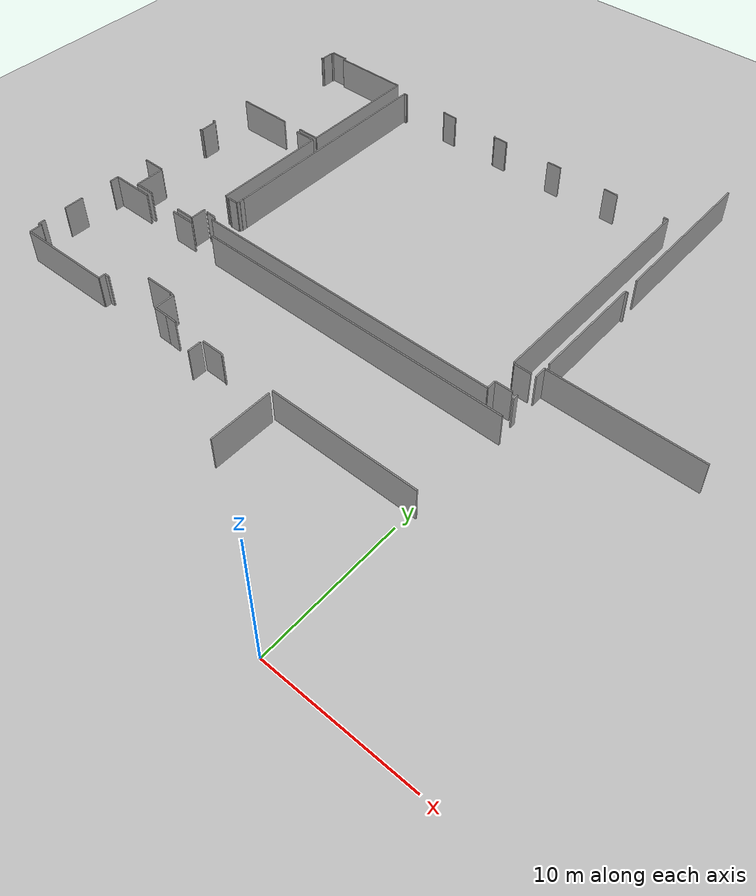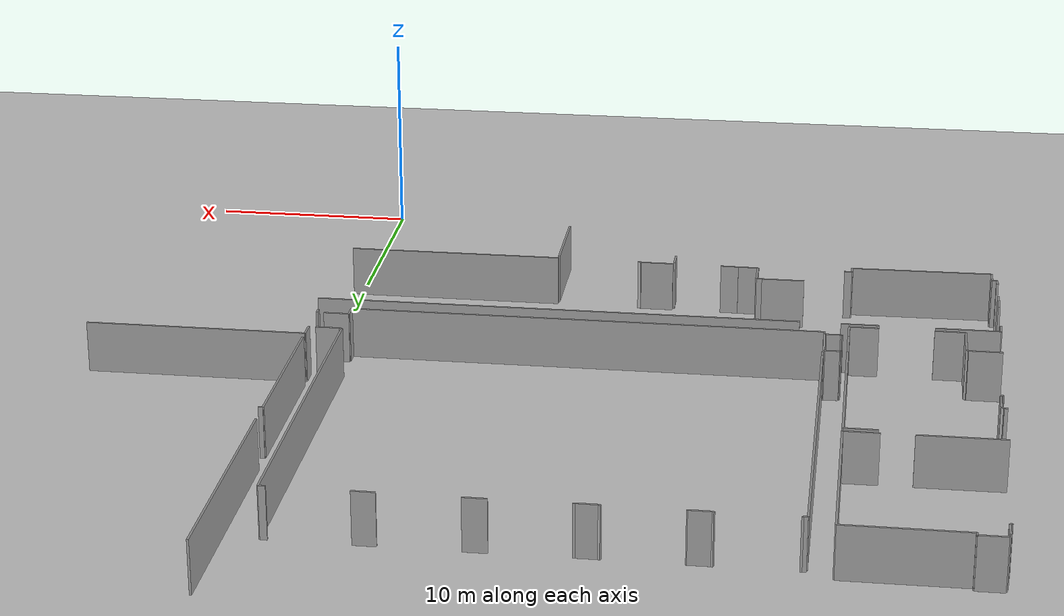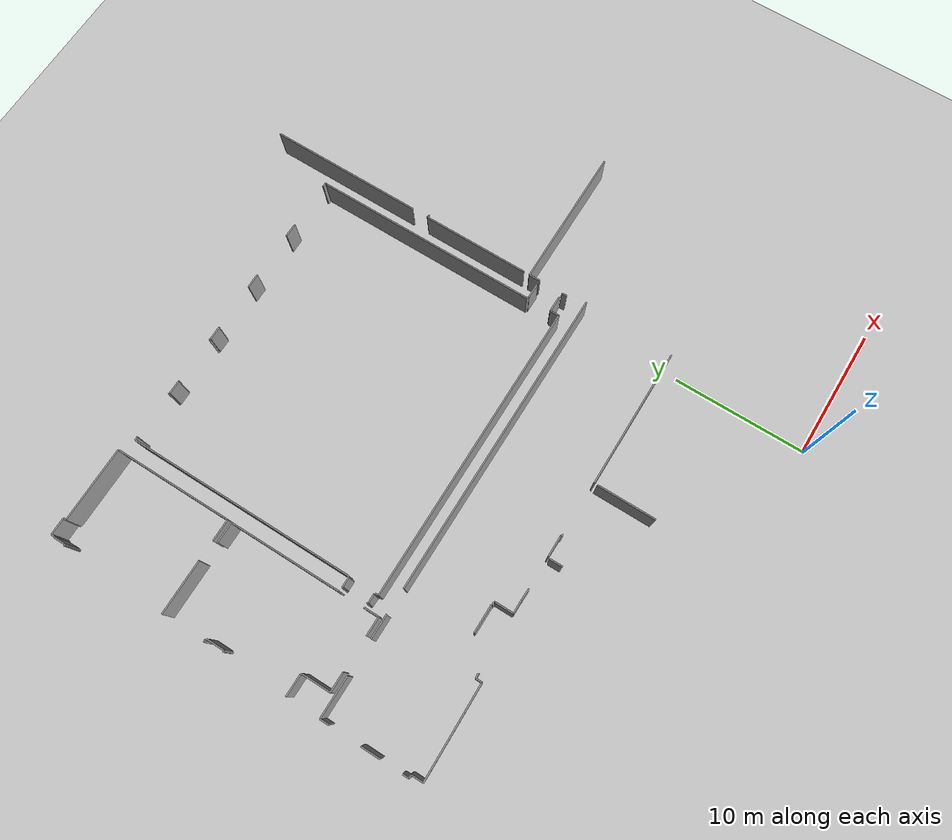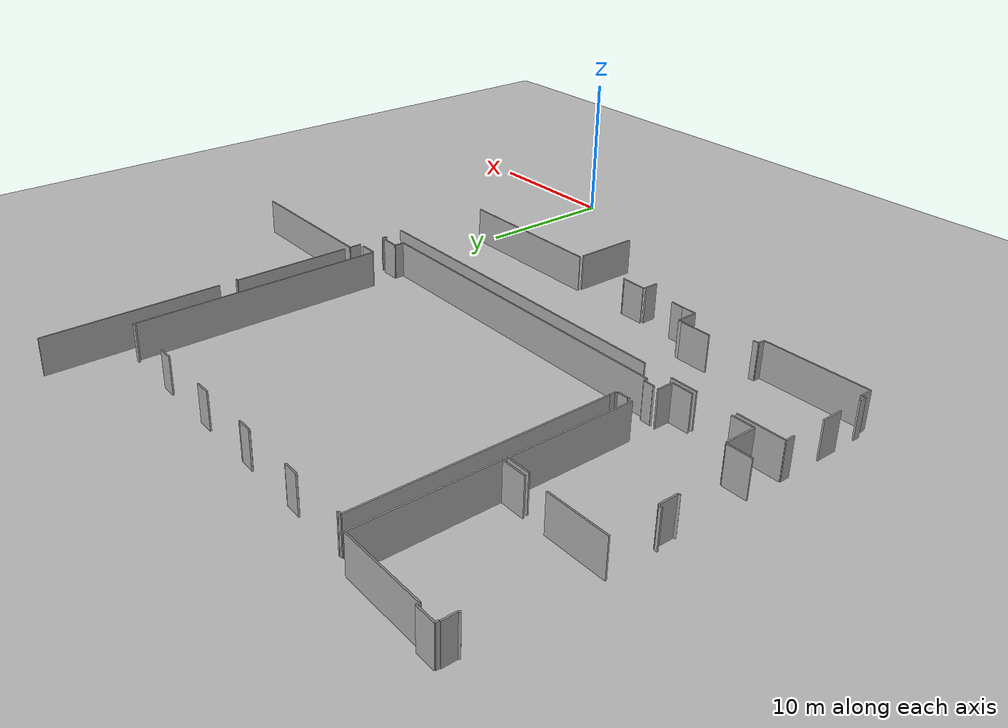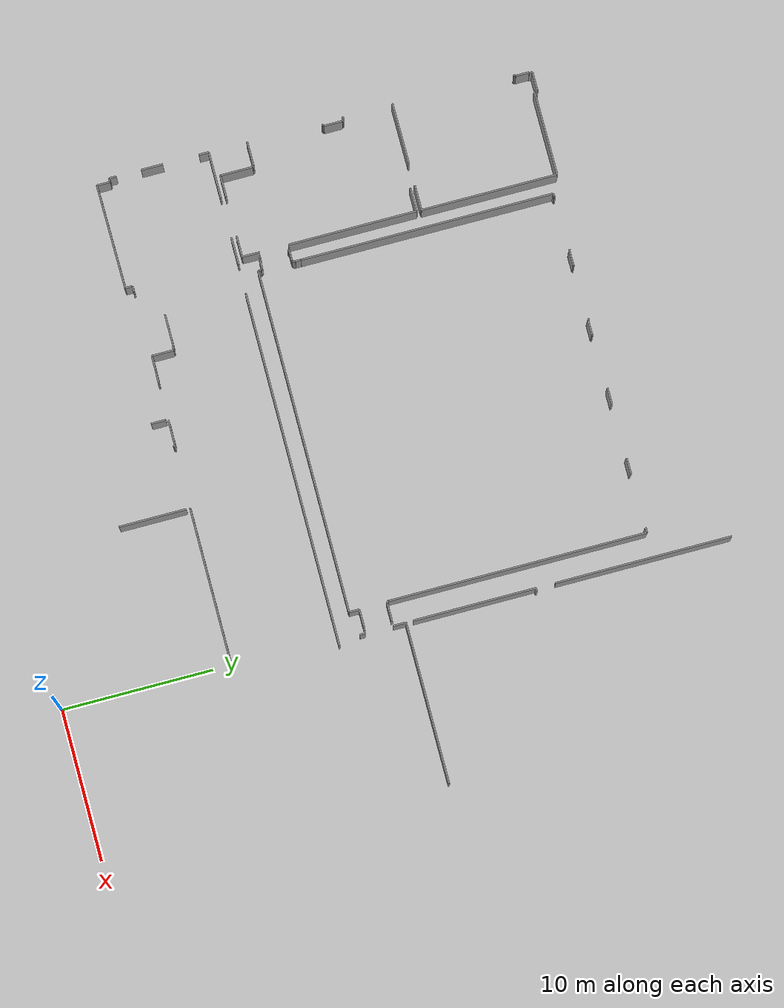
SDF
<sdf version="1.6">
 <world name="default">
  <model name="ground_plane">
   <static>1</static>
   <link name="link">
    <collision name="collision">
     <geometry><plane><normal>0 0 1</normal><size>100 100</size></plane></geometry>
     <surface><friction><ode><mu>100</mu><mu2>50</mu2></ode></friction></surface>
    </collision>
    <visual name="visual">
     <cast_shadows>0</cast_shadows>
     <geometry><plane><normal>0 0 1</normal><size>100 100</size></plane></geometry>
     <material>
      <script><uri>file://media/materials/scripts/gazebo.material</uri><name>Gazebo/Grey</name></script>
     </material>
    </visual>
   </link>
  </model>
  <model name="0510035737_A_40_1_105">
   <static>1</static>
   <link name="Wall_77">
    <collision name="Wall_77_Collision">
     <geometry><box><size>0.141744842444 0.1 2.5</size></box></geometry>
     <pose>0.0708724212222 0 1.25 0 0 0</pose>
    </collision>
    <visual name="Wall_77_Visual">
     <pose>0.0708724212222 0 1.25 0 0 0</pose>
     <geometry><box><size>0.141744842444 0.1 2.5</size></box></geometry>
     <material>
      <script><uri>file://media/materials/scripts/gazebo.material</uri><name>Gazebo/Grey</name></script>
      <ambient>1 1 1 1</ambient>
     </material>
    </visual>
    <pose>48.1629436624 -7.40643767278 0 0 0 0.880650440816</pose>
   </link>
   <link name="Wall_78">
    <collision name="Wall_78_Collision">
     <geometry><box><size>0.888436973722 0.1 2.5</size></box></geometry>
     <pose>0.444218486861 0 1.25 0 0 0</pose>
    </collision>
    <visual name="Wall_78_Visual">
     <pose>0.444218486861 0 1.25 0 0 0</pose>
     <geometry><box><size>0.888436973722 0.1 2.5</size></box></geometry>
     <material>
      <script><uri>file://media/materials/scripts/gazebo.material</uri><name>Gazebo/Grey</name></script>
      <ambient>1 1 1 1</ambient>
     </material>
    </visual>
    <pose>48.2531854723 -7.29713069175 0 0 0 1.57079632679</pose>
   </link>
   <link name="Wall_79">
    <collision name="Wall_79_Collision">
     <geometry><box><size>0.0475358266341 0.1 2.5</size></box></geometry>
     <pose>0.023767913317 0 1.25 0 0 0</pose>
    </collision>
    <visual name="Wall_79_Visual">
     <pose>0.023767913317 0 1.25 0 0 0</pose>
     <geometry><box><size>0.0475358266341 0.1 2.5</size></box></geometry>
     <material>
      <script><uri>file://media/materials/scripts/gazebo.material</uri><name>Gazebo/Grey</name></script>
      <ambient>1 1 1 1</ambient>
     </material>
    </visual>
    <pose>48.2531854723 -6.40869371803 0 0 0 0.0</pose>
   </link>
   <link name="Wall_80">
    <collision name="Wall_80_Collision">
     <geometry><box><size>0.213784118712 0.1 2.5</size></box></geometry>
     <pose>0.106892059356 0 1.25 0 0 0</pose>
    </collision>
    <visual name="Wall_80_Visual">
     <pose>0.106892059356 0 1.25 0 0 0</pose>
     <geometry><box><size>0.213784118712 0.1 2.5</size></box></geometry>
     <material>
      <script><uri>file://media/materials/scripts/gazebo.material</uri><name>Gazebo/Grey</name></script>
      <ambient>1 1 1 1</ambient>
     </material>
    </visual>
    <pose>48.300721299 -6.40869371803 0 0 0 1.57079632679</pose>
   </link>
   <link name="Wall_81">
    <collision name="Wall_81_Collision">
     <geometry><box><size>1.26846938451 0.1 2.5</size></box></geometry>
     <pose>0.634234692256 0 1.25 0 0 0</pose>
    </collision>
    <visual name="Wall_81_Visual">
     <pose>0.634234692256 0 1.25 0 0 0</pose>
     <geometry><box><size>1.26846938451 0.1 2.5</size></box></geometry>
     <material>
      <script><uri>file://media/materials/scripts/gazebo.material</uri><name>Gazebo/Grey</name></script>
      <ambient>1 1 1 1</ambient>
     </material>
    </visual>
    <pose>48.300721299 -6.19490959931 0 0 0 0.0</pose>
   </link>
   <link name="Wall_82">
    <collision name="Wall_82_Collision">
     <geometry><box><size>0.204378634298 0.1 2.5</size></box></geometry>
     <pose>0.102189317149 0 1.25 0 0 0</pose>
    </collision>
    <visual name="Wall_82_Visual">
     <pose>0.102189317149 0 1.25 0 0 0</pose>
     <geometry><box><size>0.204378634298 0.1 2.5</size></box></geometry>
     <material>
      <script><uri>file://media/materials/scripts/gazebo.material</uri><name>Gazebo/Grey</name></script>
      <ambient>1 1 1 1</ambient>
     </material>
    </visual>
    <pose>49.5691906835 -6.19490959931 0 0 0 -1.57079632679</pose>
   </link>
   <link name="Wall_83">
    <collision name="Wall_83_Collision">
     <geometry><box><size>5.60465190175 0.1 2.5</size></box></geometry>
     <pose>2.80232595088 0 1.25 0 0 0</pose>
    </collision>
    <visual name="Wall_83_Visual">
     <pose>2.80232595088 0 1.25 0 0 0</pose>
     <geometry><box><size>5.60465190175 0.1 2.5</size></box></geometry>
     <material>
      <script><uri>file://media/materials/scripts/gazebo.material</uri><name>Gazebo/Grey</name></script>
      <ambient>1 1 1 1</ambient>
     </material>
    </visual>
    <pose>49.5691906835 -6.39928823361 0 0 0 0.0</pose>
   </link>
   <link name="Wall_84">
    <collision name="Wall_84_Collision">
     <geometry><box><size>9.03739951066 0.1 2.5</size></box></geometry>
     <pose>4.51869975533 0 1.25 0 0 0</pose>
    </collision>
    <visual name="Wall_84_Visual">
     <pose>4.51869975533 0 1.25 0 0 0</pose>
     <geometry><box><size>9.03739951066 0.1 2.5</size></box></geometry>
     <material>
      <script><uri>file://media/materials/scripts/gazebo.material</uri><name>Gazebo/Grey</name></script>
      <ambient>1 1 1 1</ambient>
     </material>
    </visual>
    <pose>55.1738425852 -6.39928823361 0 0 0 -1.57079632679</pose>
   </link>
   <link name="Wall_85">
    <collision name="Wall_85_Collision">
     <geometry><box><size>1.64748498618 0.1 2.5</size></box></geometry>
     <pose>0.823742493089 0 1.25 0 0 0</pose>
    </collision>
    <visual name="Wall_85_Visual">
     <pose>0.823742493089 0 1.25 0 0 0</pose>
     <geometry><box><size>1.64748498618 0.1 2.5</size></box></geometry>
     <material>
      <script><uri>file://media/materials/scripts/gazebo.material</uri><name>Gazebo/Grey</name></script>
      <ambient>1 1 1 1</ambient>
     </material>
    </visual>
    <pose>55.1738425852 -15.4366877443 0 0 0 3.14159265359</pose>
   </link>
   <link name="Wall_86">
    <collision name="Wall_86_Collision">
     <geometry><box><size>4.04641434545 0.1 2.5</size></box></geometry>
     <pose>2.02320717272 0 1.25 0 0 0</pose>
    </collision>
    <visual name="Wall_86_Visual">
     <pose>2.02320717272 0 1.25 0 0 0</pose>
     <geometry><box><size>4.04641434545 0.1 2.5</size></box></geometry>
     <material>
      <script><uri>file://media/materials/scripts/gazebo.material</uri><name>Gazebo/Grey</name></script>
      <ambient>1 1 1 1</ambient>
     </material>
    </visual>
    <pose>52.0219884973 -15.4366877443 0 0 0 -3.13826310188</pose>
   </link>
   <link name="Wall_88">
    <collision name="Wall_88_Collision">
     <geometry><box><size>1.5539385466 0.1 2.5</size></box></geometry>
     <pose>0.776969273299 0 1.25 0 0 0</pose>
    </collision>
    <visual name="Wall_88_Visual">
     <pose>0.776969273299 0 1.25 0 0 0</pose>
     <geometry><box><size>1.5539385466 0.1 2.5</size></box></geometry>
     <material>
      <script><uri>file://media/materials/scripts/gazebo.material</uri><name>Gazebo/Grey</name></script>
      <ambient>1 1 1 1</ambient>
     </material>
    </visual>
    <pose>53.6031266881 -15.7559658098 0 0 0 0.0</pose>
   </link>
   <link name="Wall_89">
    <collision name="Wall_89_Collision">
     <geometry><box><size>8.51475961997 0.1 2.5</size></box></geometry>
     <pose>4.25737980998 0 1.25 0 0 0</pose>
    </collision>
    <visual name="Wall_89_Visual">
     <pose>4.25737980998 0 1.25 0 0 0</pose>
     <geometry><box><size>8.51475961997 0.1 2.5</size></box></geometry>
     <material>
      <script><uri>file://media/materials/scripts/gazebo.material</uri><name>Gazebo/Grey</name></script>
      <ambient>1 1 1 1</ambient>
     </material>
    </visual>
    <pose>55.1570652347 -15.7559658098 0 0 0 -1.57079632679</pose>
   </link>
   <link name="Wall_90">
    <collision name="Wall_90_Collision">
     <geometry><box><size>1.15179053732 0.1 2.5</size></box></geometry>
     <pose>0.57589526866 0 1.25 0 0 0</pose>
    </collision>
    <visual name="Wall_90_Visual">
     <pose>0.57589526866 0 1.25 0 0 0</pose>
     <geometry><box><size>1.15179053732 0.1 2.5</size></box></geometry>
     <material>
      <script><uri>file://media/materials/scripts/gazebo.material</uri><name>Gazebo/Grey</name></script>
      <ambient>1 1 1 1</ambient>
     </material>
    </visual>
    <pose>55.1570652347 -26.2006291506 0 0 0 -1.57079632679</pose>
   </link>
   <link name="Wall_91">
    <collision name="Wall_91_Collision">
     <geometry><box><size>1.41412729179 0.1 2.5</size></box></geometry>
     <pose>0.707063645896 0 1.25 0 0 0</pose>
    </collision>
    <visual name="Wall_91_Visual">
     <pose>0.707063645896 0 1.25 0 0 0</pose>
     <geometry><box><size>1.41412729179 0.1 2.5</size></box></geometry>
     <material>
      <script><uri>file://media/materials/scripts/gazebo.material</uri><name>Gazebo/Grey</name></script>
      <ambient>1 1 1 1</ambient>
     </material>
    </visual>
    <pose>55.1570652347 -27.352419688 0 0 0 3.14159265359</pose>
   </link>
   <link name="Wall_92">
    <collision name="Wall_92_Collision">
     <geometry><box><size>1.4578500842 0.1 2.5</size></box></geometry>
     <pose>0.728925042102 0 1.25 0 0 0</pose>
    </collision>
    <visual name="Wall_92_Visual">
     <pose>0.728925042102 0 1.25 0 0 0</pose>
     <geometry><box><size>1.4578500842 0.1 2.5</size></box></geometry>
     <material>
      <script><uri>file://media/materials/scripts/gazebo.material</uri><name>Gazebo/Grey</name></script>
      <ambient>1 1 1 1</ambient>
     </material>
    </visual>
    <pose>51.1228750278 -27.352419688 0 0 0 3.14159265359</pose>
   </link>
   <link name="Wall_93">
    <collision name="Wall_93_Collision">
     <geometry><box><size>2.13885799625 0.1 2.5</size></box></geometry>
     <pose>1.06942899813 0 1.25 0 0 0</pose>
    </collision>
    <visual name="Wall_93_Visual">
     <pose>1.06942899813 0 1.25 0 0 0</pose>
     <geometry><box><size>2.13885799625 0.1 2.5</size></box></geometry>
     <material>
      <script><uri>file://media/materials/scripts/gazebo.material</uri><name>Gazebo/Grey</name></script>
      <ambient>1 1 1 1</ambient>
     </material>
    </visual>
    <pose>49.6650249436 -27.352419688 0 0 0 1.57079632679</pose>
   </link>
   <link name="Wall_94">
    <collision name="Wall_94_Collision">
     <geometry><box><size>0.121265146167 0.1 2.5</size></box></geometry>
     <pose>0.0606325730836 0 1.25 0 0 0</pose>
    </collision>
    <visual name="Wall_94_Visual">
     <pose>0.0606325730836 0 1.25 0 0 0</pose>
     <geometry><box><size>0.121265146167 0.1 2.5</size></box></geometry>
     <material>
      <script><uri>file://media/materials/scripts/gazebo.material</uri><name>Gazebo/Grey</name></script>
      <ambient>1 1 1 1</ambient>
     </material>
    </visual>
    <pose>49.6650249436 -25.2135616917 0 0 0 2.42591783971</pose>
   </link>
   <link name="Wall_95">
    <collision name="Wall_95_Collision">
     <geometry><box><size>1.589526866 0.1 2.5</size></box></geometry>
     <pose>0.794763433002 0 1.25 0 0 0</pose>
    </collision>
    <visual name="Wall_95_Visual">
     <pose>0.794763433002 0 1.25 0 0 0</pose>
     <geometry><box><size>1.589526866 0.1 2.5</size></box></geometry>
     <material>
      <script><uri>file://media/materials/scripts/gazebo.material</uri><name>Gazebo/Grey</name></script>
      <ambient>1 1 1 1</ambient>
     </material>
    </visual>
    <pose>49.5735121223 -25.1339963776 0 0 0 3.14159265359</pose>
   </link>
   <link name="Wall_98">
    <collision name="Wall_98_Collision">
     <geometry><box><size>0.158561309308 0.1 2.5</size></box></geometry>
     <pose>0.0792806546542 0 1.25 0 0 0</pose>
    </collision>
    <visual name="Wall_98_Visual">
     <pose>0.0792806546542 0 1.25 0 0 0</pose>
     <geometry><box><size>0.158561309308 0.1 2.5</size></box></geometry>
     <material>
      <script><uri>file://media/materials/scripts/gazebo.material</uri><name>Gazebo/Grey</name></script>
      <ambient>1 1 1 1</ambient>
     </material>
    </visual>
    <pose>48.112865813 -20.178831305 0 0 0 0.588002603548</pose>
   </link>
   <link name="Wall_99">
    <collision name="Wall_99_Collision">
     <geometry><box><size>1.22601760351 0.1 2.5</size></box></geometry>
     <pose>0.613008801754 0 1.25 0 0 0</pose>
    </collision>
    <visual name="Wall_99_Visual">
     <pose>0.613008801754 0 1.25 0 0 0</pose>
     <geometry><box><size>1.22601760351 0.1 2.5</size></box></geometry>
     <material>
      <script><uri>file://media/materials/scripts/gazebo.material</uri><name>Gazebo/Grey</name></script>
      <ambient>1 1 1 1</ambient>
     </material>
    </visual>
    <pose>48.2447967971 -20.0908773156 0 0 0 1.57079632679</pose>
   </link>
   <link name="Wall_100">
    <collision name="Wall_100_Collision">
     <geometry><box><size>0.15138444848 0.1 2.5</size></box></geometry>
     <pose>0.0756922242402 0 1.25 0 0 0</pose>
    </collision>
    <visual name="Wall_100_Visual">
     <pose>0.0756922242402 0 1.25 0 0 0</pose>
     <geometry><box><size>0.15138444848 0.1 2.5</size></box></geometry>
     <material>
      <script><uri>file://media/materials/scripts/gazebo.material</uri><name>Gazebo/Grey</name></script>
      <ambient>1 1 1 1</ambient>
     </material>
    </visual>
    <pose>48.2447967971 -18.8648597121 0 0 0 2.40965124105</pose>
   </link>
   <link name="Wall_101">
    <collision name="Wall_101_Collision">
     <geometry><box><size>0.164468876108 0.1 2.5</size></box></geometry>
     <pose>0.0822344380541 0 1.25 0 0 0</pose>
    </collision>
    <visual name="Wall_101_Visual">
     <pose>0.0822344380541 0 1.25 0 0 0</pose>
     <geometry><box><size>0.164468876108 0.1 2.5</size></box></geometry>
     <material>
      <script><uri>file://media/materials/scripts/gazebo.material</uri><name>Gazebo/Grey</name></script>
      <ambient>1 1 1 1</ambient>
     </material>
    </visual>
    <pose>48.1321851864 -18.7636872041 0 0 0 3.14159265359</pose>
   </link>
   <link name="Wall_103">
    <collision name="Wall_103_Collision">
     <geometry><box><size>0.87242222999 0.1 2.5</size></box></geometry>
     <pose>0.436211114995 0 1.25 0 0 0</pose>
    </collision>
    <visual name="Wall_103_Visual">
     <pose>0.436211114995 0 1.25 0 0 0</pose>
     <geometry><box><size>0.87242222999 0.1 2.5</size></box></geometry>
     <material>
      <script><uri>file://media/materials/scripts/gazebo.material</uri><name>Gazebo/Grey</name></script>
      <ambient>1 1 1 1</ambient>
     </material>
    </visual>
    <pose>48.2516602587 -35.2019319373 0 0 0 1.57079632679</pose>
   </link>
   <link name="Wall_104">
    <collision name="Wall_104_Collision">
     <geometry><box><size>0.249372438118 0.1 2.5</size></box></geometry>
     <pose>0.124686219059 0 1.25 0 0 0</pose>
    </collision>
    <visual name="Wall_104_Visual">
     <pose>0.124686219059 0 1.25 0 0 0</pose>
     <geometry><box><size>0.249372438118 0.1 2.5</size></box></geometry>
     <material>
      <script><uri>file://media/materials/scripts/gazebo.material</uri><name>Gazebo/Grey</name></script>
      <ambient>1 1 1 1</ambient>
     </material>
    </visual>
    <pose>48.2516602587 -34.3295097073 0 0 0 3.14159265359</pose>
   </link>
   <link name="Wall_105">
    <collision name="Wall_105_Collision">
     <geometry><box><size>0.481967525659 0.1 2.5</size></box></geometry>
     <pose>0.240983762829 0 1.25 0 0 0</pose>
    </collision>
    <visual name="Wall_105_Visual">
     <pose>0.240983762829 0 1.25 0 0 0</pose>
     <geometry><box><size>0.481967525659 0.1 2.5</size></box></geometry>
     <material>
      <script><uri>file://media/materials/scripts/gazebo.material</uri><name>Gazebo/Grey</name></script>
      <ambient>1 1 1 1</ambient>
     </material>
    </visual>
    <pose>48.0022878205 -34.3295097073 0 0 0 1.57079632679</pose>
   </link>
   <link name="Wall_106">
    <collision name="Wall_106_Collision">
     <geometry><box><size>1.43954751994 0.1 2.5</size></box></geometry>
     <pose>0.719773759969 0 1.25 0 0 0</pose>
    </collision>
    <visual name="Wall_106_Visual">
     <pose>0.719773759969 0 1.25 0 0 0</pose>
     <geometry><box><size>1.43954751994 0.1 2.5</size></box></geometry>
     <material>
      <script><uri>file://media/materials/scripts/gazebo.material</uri><name>Gazebo/Grey</name></script>
      <ambient>1 1 1 1</ambient>
     </material>
    </visual>
    <pose>48.0022878205 -32.2015824092 0 0 0 1.57079632679</pose>
   </link>
   <link name="Wall_107">
    <collision name="Wall_107_Collision">
     <geometry><box><size>0.653554065648 0.1 2.5</size></box></geometry>
     <pose>0.326777032824 0 1.25 0 0 0</pose>
    </collision>
    <visual name="Wall_107_Visual">
     <pose>0.326777032824 0 1.25 0 0 0</pose>
     <geometry><box><size>0.653554065648 0.1 2.5</size></box></geometry>
     <material>
      <script><uri>file://media/materials/scripts/gazebo.material</uri><name>Gazebo/Grey</name></script>
      <ambient>1 1 1 1</ambient>
     </material>
    </visual>
    <pose>48.0022878205 -28.3506720473 0 0 0 1.57079632679</pose>
   </link>
   <link name="Wall_108">
    <collision name="Wall_108_Collision">
     <geometry><box><size>3.08220266277 0.1 2.5</size></box></geometry>
     <pose>1.54110133138 0 1.25 0 0 0</pose>
    </collision>
    <visual name="Wall_108_Visual">
     <pose>1.54110133138 0 1.25 0 0 0</pose>
     <geometry><box><size>3.08220266277 0.1 2.5</size></box></geometry>
     <material>
      <script><uri>file://media/materials/scripts/gazebo.material</uri><name>Gazebo/Grey</name></script>
      <ambient>1 1 1 1</ambient>
     </material>
    </visual>
    <pose>48.0022878205 -27.6971179816 0 0 0 0.0</pose>
   </link>
   <link name="Wall_109">
    <collision name="Wall_109_Collision">
     <geometry><box><size>1.81678370563 0.1 2.5</size></box></geometry>
     <pose>0.908391852817 0 1.25 0 0 0</pose>
    </collision>
    <visual name="Wall_109_Visual">
     <pose>0.908391852817 0 1.25 0 0 0</pose>
     <geometry><box><size>1.81678370563 0.1 2.5</size></box></geometry>
     <material>
      <script><uri>file://media/materials/scripts/gazebo.material</uri><name>Gazebo/Grey</name></script>
      <ambient>1 1 1 1</ambient>
     </material>
    </visual>
    <pose>53.7442089543 -27.6971179816 0 0 0 0.0</pose>
   </link>
   <link name="Wall_110">
    <collision name="Wall_110_Collision">
     <geometry><box><size>0.370626926377 0.1 2.5</size></box></geometry>
     <pose>0.185313463188 0 1.25 0 0 0</pose>
    </collision>
    <visual name="Wall_110_Visual">
     <pose>0.185313463188 0 1.25 0 0 0</pose>
     <geometry><box><size>0.370626926377 0.1 2.5</size></box></geometry>
     <material>
      <script><uri>file://media/materials/scripts/gazebo.material</uri><name>Gazebo/Grey</name></script>
      <ambient>1 1 1 1</ambient>
     </material>
    </visual>
    <pose>55.5609926599 -34.6370944679 0 0 0 3.14159265359</pose>
   </link>
   <link name="Wall_111">
    <collision name="Wall_111_Collision">
     <geometry><box><size>0.481967525659 0.1 2.5</size></box></geometry>
     <pose>0.240983762829 0 1.25 0 0 0</pose>
    </collision>
    <visual name="Wall_111_Visual">
     <pose>0.240983762829 0 1.25 0 0 0</pose>
     <geometry><box><size>0.481967525659 0.1 2.5</size></box></geometry>
     <material>
      <script><uri>file://media/materials/scripts/gazebo.material</uri><name>Gazebo/Grey</name></script>
      <ambient>1 1 1 1</ambient>
     </material>
    </visual>
    <pose>55.1903657335 -34.6370944679 0 0 0 -1.57079632679</pose>
   </link>
   <link name="Wall_112">
    <collision name="Wall_112_Collision">
     <geometry><box><size>6.93920032098 0.1 2.5</size></box></geometry>
     <pose>3.46960016049 0 1.25 0 0 0</pose>
    </collision>
    <visual name="Wall_112_Visual">
     <pose>3.46960016049 0 1.25 0 0 0</pose>
     <geometry><box><size>6.93920032098 0.1 2.5</size></box></geometry>
     <material>
      <script><uri>file://media/materials/scripts/gazebo.material</uri><name>Gazebo/Grey</name></script>
      <ambient>1 1 1 1</ambient>
     </material>
    </visual>
    <pose>55.1903657335 -35.1190619936 0 0 0 -3.12965007954</pose>
   </link>
   <link name="Wall_113">
    <collision name="Wall_113_Collision">
     <geometry><box><size>16.8078548505 0.1 2.5</size></box></geometry>
     <pose>8.40392742525 0 1.25 0 0 0</pose>
    </collision>
    <visual name="Wall_113_Visual">
     <pose>8.40392742525 0 1.25 0 0 0</pose>
     <geometry><box><size>16.8078548505 0.1 2.5</size></box></geometry>
     <material>
      <script><uri>file://media/materials/scripts/gazebo.material</uri><name>Gazebo/Grey</name></script>
      <ambient>1 1 1 1</ambient>
     </material>
    </visual>
    <pose>56.3113977948 -23.7613040577 0 0 0 1.57079632679</pose>
   </link>
   <link name="Wall_114">
    <collision name="Wall_114_Collision">
     <geometry><box><size>0.220901782594 0.1 2.5</size></box></geometry>
     <pose>0.110450891297 0 1.25 0 0 0</pose>
    </collision>
    <visual name="Wall_114_Visual">
     <pose>0.110450891297 0 1.25 0 0 0</pose>
     <geometry><box><size>0.220901782594 0.1 2.5</size></box></geometry>
     <material>
      <script><uri>file://media/materials/scripts/gazebo.material</uri><name>Gazebo/Grey</name></script>
      <ambient>1 1 1 1</ambient>
     </material>
    </visual>
    <pose>56.3113977948 -6.95344920721 0 0 0 0.0</pose>
   </link>
   <link name="Wall_115">
    <collision name="Wall_115_Collision">
     <geometry><box><size>0.0724476502177 0.1 2.5</size></box></geometry>
     <pose>0.0362238251088 0 1.25 0 0 0</pose>
    </collision>
    <visual name="Wall_115_Visual">
     <pose>0.0362238251088 0 1.25 0 0 0</pose>
     <geometry><box><size>0.0724476502177 0.1 2.5</size></box></geometry>
     <material>
      <script><uri>file://media/materials/scripts/gazebo.material</uri><name>Gazebo/Grey</name></script>
      <ambient>1 1 1 1</ambient>
     </material>
    </visual>
    <pose>56.5322995774 -6.95344920721 0 0 0 1.57079632679</pose>
   </link>
   <link name="Wall_116">
    <collision name="Wall_116_Collision">
     <geometry><box><size>0.100583509616 0.1 2.5</size></box></geometry>
     <pose>0.0502917548081 0 1.25 0 0 0</pose>
    </collision>
    <visual name="Wall_116_Visual">
     <pose>0.0502917548081 0 1.25 0 0 0</pose>
     <geometry><box><size>0.100583509616 0.1 2.5</size></box></geometry>
     <material>
      <script><uri>file://media/materials/scripts/gazebo.material</uri><name>Gazebo/Grey</name></script>
      <ambient>1 1 1 1</ambient>
     </material>
    </visual>
    <pose>60.1018080137 -6.88100155699 0 0 0 -0.526982944403</pose>
   </link>
   <link name="Wall_117">
    <collision name="Wall_117_Collision">
     <geometry><box><size>1.00435321407 0.1 2.5</size></box></geometry>
     <pose>0.502176607035 0 1.25 0 0 0</pose>
    </collision>
    <visual name="Wall_117_Visual">
     <pose>0.502176607035 0 1.25 0 0 0</pose>
     <geometry><box><size>1.00435321407 0.1 2.5</size></box></geometry>
     <material>
      <script><uri>file://media/materials/scripts/gazebo.material</uri><name>Gazebo/Grey</name></script>
      <ambient>1 1 1 1</ambient>
     </material>
    </visual>
    <pose>60.188745194 -6.931587811 0 0 0 0.0</pose>
   </link>
   <link name="Wall_118">
    <collision name="Wall_118_Collision">
     <geometry><box><size>0.0432143878491 0.1 2.5</size></box></geometry>
     <pose>0.0216071939246 0 1.25 0 0 0</pose>
    </collision>
    <visual name="Wall_118_Visual">
     <pose>0.0216071939246 0 1.25 0 0 0</pose>
     <geometry><box><size>0.0432143878491 0.1 2.5</size></box></geometry>
     <material>
      <script><uri>file://media/materials/scripts/gazebo.material</uri><name>Gazebo/Grey</name></script>
      <ambient>1 1 1 1</ambient>
     </material>
    </visual>
    <pose>61.1930984081 -6.931587811 0 0 0 1.57079632679</pose>
   </link>
   <link name="Wall_119">
    <collision name="Wall_119_Collision">
     <geometry><box><size>0.126339301096 0.1 2.5</size></box></geometry>
     <pose>0.0631696505481 0 1.25 0 0 0</pose>
    </collision>
    <visual name="Wall_119_Visual">
     <pose>0.0631696505481 0 1.25 0 0 0</pose>
     <geometry><box><size>0.126339301096 0.1 2.5</size></box></geometry>
     <material>
      <script><uri>file://media/materials/scripts/gazebo.material</uri><name>Gazebo/Grey</name></script>
      <ambient>1 1 1 1</ambient>
     </material>
    </visual>
    <pose>64.7409996505 -6.88837342315 0 0 0 -0.541109631286</pose>
   </link>
   <link name="Wall_120">
    <collision name="Wall_120_Collision">
     <geometry><box><size>0.997235550189 0.1 2.5</size></box></geometry>
     <pose>0.498617775095 0 1.25 0 0 0</pose>
    </collision>
    <visual name="Wall_120_Visual">
     <pose>0.498617775095 0 1.25 0 0 0</pose>
     <geometry><box><size>0.997235550189 0.1 2.5</size></box></geometry>
     <material>
      <script><uri>file://media/materials/scripts/gazebo.material</uri><name>Gazebo/Grey</name></script>
      <ambient>1 1 1 1</ambient>
     </material>
    </visual>
    <pose>64.8492898224 -6.95344920721 0 0 0 0.0</pose>
   </link>
   <link name="Wall_121">
    <collision name="Wall_121_Collision">
     <geometry><box><size>0.0505862540116 0.1 2.5</size></box></geometry>
     <pose>0.0252931270058 0 1.25 0 0 0</pose>
    </collision>
    <visual name="Wall_121_Visual">
     <pose>0.0252931270058 0 1.25 0 0 0</pose>
     <geometry><box><size>0.0505862540116 0.1 2.5</size></box></geometry>
     <material>
      <script><uri>file://media/materials/scripts/gazebo.material</uri><name>Gazebo/Grey</name></script>
      <ambient>1 1 1 1</ambient>
     </material>
    </visual>
    <pose>65.8465253726 -6.95344920721 0 0 0 1.57079632679</pose>
   </link>
   <link name="Wall_122">
    <collision name="Wall_122_Collision">
     <geometry><box><size>1.09281560802 0.1 2.5</size></box></geometry>
     <pose>0.54640780401 0 1.25 0 0 0</pose>
    </collision>
    <visual name="Wall_122_Visual">
     <pose>0.54640780401 0 1.25 0 0 0</pose>
     <geometry><box><size>1.09281560802 0.1 2.5</size></box></geometry>
     <material>
      <script><uri>file://media/materials/scripts/gazebo.material</uri><name>Gazebo/Grey</name></script>
      <ambient>1 1 1 1</ambient>
     </material>
    </visual>
    <pose>69.4104413587 -6.9028629532 0 0 0 0.0</pose>
   </link>
   <link name="Wall_123">
    <collision name="Wall_123_Collision">
     <geometry><box><size>1.05621047949 0.1 2.5</size></box></geometry>
     <pose>0.528105239745 0 1.25 0 0 0</pose>
    </collision>
    <visual name="Wall_123_Visual">
     <pose>0.528105239745 0 1.25 0 0 0</pose>
     <geometry><box><size>1.05621047949 0.1 2.5</size></box></geometry>
     <material>
      <script><uri>file://media/materials/scripts/gazebo.material</uri><name>Gazebo/Grey</name></script>
      <ambient>1 1 1 1</ambient>
     </material>
    </visual>
    <pose>74.0788662578 -6.9028629532 0 0 0 0.0</pose>
   </link>
   <link name="Wall_124">
    <collision name="Wall_124_Collision">
     <geometry><box><size>0.318261256395 0.1 2.5</size></box></geometry>
     <pose>0.159130628197 0 1.25 0 0 0</pose>
    </collision>
    <visual name="Wall_124_Visual">
     <pose>0.159130628197 0 1.25 0 0 0</pose>
     <geometry><box><size>0.318261256395 0.1 2.5</size></box></geometry>
     <material>
      <script><uri>file://media/materials/scripts/gazebo.material</uri><name>Gazebo/Grey</name></script>
      <ambient>1 1 1 1</ambient>
     </material>
    </visual>
    <pose>78.7180578946 -6.9028629532 0 0 0 0.0</pose>
   </link>
   <link name="Wall_125">
    <collision name="Wall_125_Collision">
     <geometry><box><size>17.0811223031 0.1 2.5</size></box></geometry>
     <pose>8.54056115154 0 1.25 0 0 0</pose>
    </collision>
    <visual name="Wall_125_Visual">
     <pose>8.54056115154 0 1.25 0 0 0</pose>
     <geometry><box><size>17.0811223031 0.1 2.5</size></box></geometry>
     <material>
      <script><uri>file://media/materials/scripts/gazebo.material</uri><name>Gazebo/Grey</name></script>
      <ambient>1 1 1 1</ambient>
     </material>
    </visual>
    <pose>79.036319151 -6.9028629532 0 0 0 -1.57079632679</pose>
   </link>
   <link name="Wall_126">
    <collision name="Wall_126_Collision">
     <geometry><box><size>0.153946714977 0.1 2.5</size></box></geometry>
     <pose>0.0769733574884 0 1.25 0 0 0</pose>
    </collision>
    <visual name="Wall_126_Visual">
     <pose>0.0769733574884 0 1.25 0 0 0</pose>
     <geometry><box><size>0.153946714977 0.1 2.5</size></box></geometry>
     <material>
      <script><uri>file://media/materials/scripts/gazebo.material</uri><name>Gazebo/Grey</name></script>
      <ambient>1 1 1 1</ambient>
     </material>
    </visual>
    <pose>79.036319151 -23.9839852563 0 0 0 -0.752699541797</pose>
   </link>
   <link name="Wall_127">
    <collision name="Wall_127_Collision">
     <geometry><box><size>1.16602586508 0.1 2.5</size></box></geometry>
     <pose>0.583012932541 0 1.25 0 0 0</pose>
    </collision>
    <visual name="Wall_127_Visual">
     <pose>0.583012932541 0 1.25 0 0 0</pose>
     <geometry><box><size>1.16602586508 0.1 2.5</size></box></geometry>
     <material>
      <script><uri>file://media/materials/scripts/gazebo.material</uri><name>Gazebo/Grey</name></script>
      <ambient>1 1 1 1</ambient>
     </material>
    </visual>
    <pose>79.1486765594 -24.0892250008 0 0 0 0.0</pose>
   </link>
   <link name="Wall_128">
    <collision name="Wall_128_Collision">
     <geometry><box><size>1.23288106511 0.1 2.5</size></box></geometry>
     <pose>0.616440532554 0 1.25 0 0 0</pose>
    </collision>
    <visual name="Wall_128_Visual">
     <pose>0.616440532554 0 1.25 0 0 0</pose>
     <geometry><box><size>1.23288106511 0.1 2.5</size></box></geometry>
     <material>
      <script><uri>file://media/materials/scripts/gazebo.material</uri><name>Gazebo/Grey</name></script>
      <ambient>1 1 1 1</ambient>
     </material>
    </visual>
    <pose>80.3147024245 -25.9049918973 0 0 0 3.14159265359</pose>
   </link>
   <link name="Wall_129">
    <collision name="Wall_129_Collision">
     <geometry><box><size>0.678465889231 0.1 2.5</size></box></geometry>
     <pose>0.339232944616 0 1.25 0 0 0</pose>
    </collision>
    <visual name="Wall_129_Visual">
     <pose>0.339232944616 0 1.25 0 0 0</pose>
     <geometry><box><size>0.678465889231 0.1 2.5</size></box></geometry>
     <material>
      <script><uri>file://media/materials/scripts/gazebo.material</uri><name>Gazebo/Grey</name></script>
      <ambient>1 1 1 1</ambient>
     </material>
    </visual>
    <pose>79.0818213593 -25.9049918973 0 0 0 -1.57079632679</pose>
   </link>
   <link name="Wall_130">
    <collision name="Wall_130_Collision">
     <geometry><box><size>22.7816084649 0.1 2.5</size></box></geometry>
     <pose>11.3908042325 0 1.25 0 0 0</pose>
    </collision>
    <visual name="Wall_130_Visual">
     <pose>11.3908042325 0 1.25 0 0 0</pose>
     <geometry><box><size>22.7816084649 0.1 2.5</size></box></geometry>
     <material>
      <script><uri>file://media/materials/scripts/gazebo.material</uri><name>Gazebo/Grey</name></script>
      <ambient>1 1 1 1</ambient>
     </material>
    </visual>
    <pose>79.0818213593 -26.5834577865 0 0 0 3.14159265359</pose>
   </link>
   <link name="Wall_131">
    <collision name="Wall_131_Collision">
     <geometry><box><size>0.180737822122 0.1 2.5</size></box></geometry>
     <pose>0.090368911061 0 1.25 0 0 0</pose>
    </collision>
    <visual name="Wall_131_Visual">
     <pose>0.090368911061 0 1.25 0 0 0</pose>
     <geometry><box><size>0.180737822122 0.1 2.5</size></box></geometry>
     <material>
      <script><uri>file://media/materials/scripts/gazebo.material</uri><name>Gazebo/Grey</name></script>
      <ambient>1 1 1 1</ambient>
     </material>
    </visual>
    <pose>56.3002128944 -26.5834577865 0 0 0 1.57079632679</pose>
   </link>
   <link name="Wall_132">
    <collision name="Wall_132_Collision">
     <geometry><box><size>0.142949630813 0.1 2.5</size></box></geometry>
     <pose>0.0714748154064 0 1.25 0 0 0</pose>
    </collision>
    <visual name="Wall_132_Visual">
     <pose>0.0714748154064 0 1.25 0 0 0</pose>
     <geometry><box><size>0.142949630813 0.1 2.5</size></box></geometry>
     <material>
      <script><uri>file://media/materials/scripts/gazebo.material</uri><name>Gazebo/Grey</name></script>
      <ambient>1 1 1 1</ambient>
     </material>
    </visual>
    <pose>56.3002128944 -26.4027199644 0 0 0 2.32978553706</pose>
   </link>
   <link name="Wall_133">
    <collision name="Wall_133_Collision">
     <geometry><box><size>0.667026786565 0.1 2.5</size></box></geometry>
     <pose>0.333513393283 0 1.25 0 0 0</pose>
    </collision>
    <visual name="Wall_133_Visual">
     <pose>0.333513393283 0 1.25 0 0 0</pose>
     <geometry><box><size>0.667026786565 0.1 2.5</size></box></geometry>
     <material>
      <script><uri>file://media/materials/scripts/gazebo.material</uri><name>Gazebo/Grey</name></script>
      <ambient>1 1 1 1</ambient>
     </material>
    </visual>
    <pose>56.2018366115 -26.2990054336 0 0 0 3.14159265359</pose>
   </link>
   <link name="Wall_134">
    <collision name="Wall_134_Collision">
     <geometry><box><size>0.103127519033 0.1 2.5</size></box></geometry>
     <pose>0.0515637595165 0 1.25 0 0 0</pose>
    </collision>
    <visual name="Wall_134_Visual">
     <pose>0.0515637595165 0 1.25 0 0 0</pose>
     <geometry><box><size>0.103127519033 0.1 2.5</size></box></geometry>
     <material>
      <script><uri>file://media/materials/scripts/gazebo.material</uri><name>Gazebo/Grey</name></script>
      <ambient>1 1 1 1</ambient>
     </material>
    </visual>
    <pose>55.5348098249 -26.2990054336 0 0 0 2.40676216428</pose>
   </link>
   <link name="Wall_135">
    <collision name="Wall_135_Collision">
     <geometry><box><size>0.099564903922 0.1 2.5</size></box></geometry>
     <pose>0.049782451961 0 1.25 0 0 0</pose>
    </collision>
    <visual name="Wall_135_Visual">
     <pose>0.049782451961 0 1.25 0 0 0</pose>
     <geometry><box><size>0.099564903922 0.1 2.5</size></box></geometry>
     <material>
      <script><uri>file://media/materials/scripts/gazebo.material</uri><name>Gazebo/Grey</name></script>
      <ambient>1 1 1 1</ambient>
     </material>
    </visual>
    <pose>55.4582949382 -24.391979918 0 0 0 0.868539395286</pose>
   </link>
   <link name="Wall_136">
    <collision name="Wall_136_Collision">
     <geometry><box><size>0.722188681643 0.1 2.5</size></box></geometry>
     <pose>0.361094340822 0 1.25 0 0 0</pose>
    </collision>
    <visual name="Wall_136_Visual">
     <pose>0.361094340822 0 1.25 0 0 0</pose>
     <geometry><box><size>0.722188681643 0.1 2.5</size></box></geometry>
     <material>
      <script><uri>file://media/materials/scripts/gazebo.material</uri><name>Gazebo/Grey</name></script>
      <ambient>1 1 1 1</ambient>
     </material>
    </visual>
    <pose>55.5226081154 -24.3159734359 0 0 0 0.0</pose>
   </link>
   <link name="Wall_137">
    <collision name="Wall_137_Collision">
     <geometry><box><size>0.21036970521 0.1 2.5</size></box></geometry>
     <pose>0.105184852605 0 1.25 0 0 0</pose>
    </collision>
    <visual name="Wall_137_Visual">
     <pose>0.105184852605 0 1.25 0 0 0</pose>
     <geometry><box><size>0.21036970521 0.1 2.5</size></box></geometry>
     <material>
      <script><uri>file://media/materials/scripts/gazebo.material</uri><name>Gazebo/Grey</name></script>
      <ambient>1 1 1 1</ambient>
     </material>
    </visual>
    <pose>56.2447967971 -24.3159734359 0 0 0 1.24866365549</pose>
   </link>
   <link name="Wall_138">
    <collision name="Wall_138_Collision">
     <geometry><box><size>0.355120587207 0.1 2.5</size></box></geometry>
     <pose>0.177560293604 0 1.25 0 0 0</pose>
    </collision>
    <visual name="Wall_138_Visual">
     <pose>0.177560293604 0 1.25 0 0 0</pose>
     <geometry><box><size>0.355120587207 0.1 2.5</size></box></geometry>
     <material>
      <script><uri>file://media/materials/scripts/gazebo.material</uri><name>Gazebo/Grey</name></script>
      <ambient>1 1 1 1</ambient>
     </material>
    </visual>
    <pose>56.3113977948 -24.1164246449 0 0 0 1.57079632679</pose>
   </link>
   <link name="Wall_139">
    <collision name="Wall_139_Collision">
     <geometry><box><size>0.988592672619 0.1 2.5</size></box></geometry>
     <pose>0.49429633631 0 1.25 0 0 0</pose>
    </collision>
    <visual name="Wall_139_Visual">
     <pose>0.49429633631 0 1.25 0 0 0</pose>
     <geometry><box><size>0.988592672619 0.1 2.5</size></box></geometry>
     <material>
      <script><uri>file://media/materials/scripts/gazebo.material</uri><name>Gazebo/Grey</name></script>
      <ambient>1 1 1 1</ambient>
     </material>
    </visual>
    <pose>60.8768707699 -34.5725270884 0 0 0 3.14159265359</pose>
   </link>
   <link name="Wall_140">
    <collision name="Wall_140_Collision">
     <geometry><box><size>1.44564837469 0.1 2.5</size></box></geometry>
     <pose>0.722824187347 0 1.25 0 0 0</pose>
    </collision>
    <visual name="Wall_140_Visual">
     <pose>0.722824187347 0 1.25 0 0 0</pose>
     <geometry><box><size>1.44564837469 0.1 2.5</size></box></geometry>
     <material>
      <script><uri>file://media/materials/scripts/gazebo.material</uri><name>Gazebo/Grey</name></script>
      <ambient>1 1 1 1</ambient>
     </material>
    </visual>
    <pose>59.8882780973 -34.5725270884 0 0 0 1.57079632679</pose>
   </link>
   <link name="Wall_141">
    <collision name="Wall_141_Collision">
     <geometry><box><size>0.270217025198 0.1 2.5</size></box></geometry>
     <pose>0.135108512599 0 1.25 0 0 0</pose>
    </collision>
    <visual name="Wall_141_Visual">
     <pose>0.135108512599 0 1.25 0 0 0</pose>
     <geometry><box><size>0.270217025198 0.1 2.5</size></box></geometry>
     <material>
      <script><uri>file://media/materials/scripts/gazebo.material</uri><name>Gazebo/Grey</name></script>
      <ambient>1 1 1 1</ambient>
     </material>
    </visual>
    <pose>59.8882780973 -33.1268787137 0 0 0 3.14159265359</pose>
   </link>
   <link name="Wall_142">
    <collision name="Wall_142_Collision">
     <geometry><box><size>0.0439769946935 0.1 2.5</size></box></geometry>
     <pose>0.0219884973468 0 1.25 0 0 0</pose>
    </collision>
    <visual name="Wall_142_Visual">
     <pose>0.0219884973468 0 1.25 0 0 0</pose>
     <geometry><box><size>0.0439769946935 0.1 2.5</size></box></geometry>
     <material>
      <script><uri>file://media/materials/scripts/gazebo.material</uri><name>Gazebo/Grey</name></script>
      <ambient>1 1 1 1</ambient>
     </material>
    </visual>
    <pose>59.6180610721 -33.1268787137 0 0 0 1.57079632679</pose>
   </link>
   <link name="Wall_143">
    <collision name="Wall_143_Collision">
     <geometry><box><size>2.09945664262 0.1 2.5</size></box></geometry>
     <pose>1.04972832131 0 1.25 0 0 0</pose>
    </collision>
    <visual name="Wall_143_Visual">
     <pose>1.04972832131 0 1.25 0 0 0</pose>
     <geometry><box><size>2.09945664262 0.1 2.5</size></box></geometry>
     <material>
      <script><uri>file://media/materials/scripts/gazebo.material</uri><name>Gazebo/Grey</name></script>
      <ambient>1 1 1 1</ambient>
     </material>
    </visual>
    <pose>59.6180610721 -33.082901719 0 0 0 3.14159265359</pose>
   </link>
   <link name="Wall_144">
    <collision name="Wall_144_Collision">
     <geometry><box><size>23.4633789838 0.1 2.5</size></box></geometry>
     <pose>11.7316894919 0 1.25 0 0 0</pose>
    </collision>
    <visual name="Wall_144_Visual">
     <pose>11.7316894919 0 1.25 0 0 0</pose>
     <geometry><box><size>23.4633789838 0.1 2.5</size></box></geometry>
     <material>
      <script><uri>file://media/materials/scripts/gazebo.material</uri><name>Gazebo/Grey</name></script>
      <ambient>1 1 1 1</ambient>
     </material>
    </visual>
    <pose>57.5186044295 -27.7230466143 0 0 0 0.0</pose>
   </link>
   <link name="Wall_161">
    <collision name="Wall_161_Collision">
     <geometry><box><size>10.6271805789 0.1 2.5</size></box></geometry>
     <pose>5.31359028947 0 1.25 0 0 0</pose>
    </collision>
    <visual name="Wall_161_Visual">
     <pose>5.31359028947 0 1.25 0 0 0</pose>
     <geometry><box><size>10.6271805789 0.1 2.5</size></box></geometry>
     <material>
      <script><uri>file://media/materials/scripts/gazebo.material</uri><name>Gazebo/Grey</name></script>
      <ambient>1 1 1 1</ambient>
     </material>
    </visual>
    <pose>80.6505036383 -34.6881891265 0 0 0 3.14159265359</pose>
   </link>
   <link name="Wall_162">
    <collision name="Wall_162_Collision">
     <geometry><box><size>0.175659662409 0.1 2.5</size></box></geometry>
     <pose>0.0878298312046 0 1.25 0 0 0</pose>
    </collision>
    <visual name="Wall_162_Visual">
     <pose>0.0878298312046 0 1.25 0 0 0</pose>
     <geometry><box><size>0.175659662409 0.1 2.5</size></box></geometry>
     <material>
      <script><uri>file://media/materials/scripts/gazebo.material</uri><name>Gazebo/Grey</name></script>
      <ambient>1 1 1 1</ambient>
     </material>
    </visual>
    <pose>65.9395634076 -34.6881891265 0 0 0 2.61383070515</pose>
   </link>
   <link name="Wall_163">
    <collision name="Wall_163_Collision">
     <geometry><box><size>1.60503320517 0.1 2.5</size></box></geometry>
     <pose>0.802516602587 0 1.25 0 0 0</pose>
    </collision>
    <visual name="Wall_163_Visual">
     <pose>0.802516602587 0 1.25 0 0 0</pose>
     <geometry><box><size>1.60503320517 0.1 2.5</size></box></geometry>
     <material>
      <script><uri>file://media/materials/scripts/gazebo.material</uri><name>Gazebo/Grey</name></script>
      <ambient>1 1 1 1</ambient>
     </material>
    </visual>
    <pose>65.7878046455 -34.5997267325 0 0 0 3.14159265359</pose>
   </link>
   <link name="Wall_164">
    <collision name="Wall_164_Collision">
     <geometry><box><size>0.880214446748 0.1 2.5</size></box></geometry>
     <pose>0.440107223374 0 1.25 0 0 0</pose>
    </collision>
    <visual name="Wall_164_Visual">
     <pose>0.440107223374 0 1.25 0 0 0</pose>
     <geometry><box><size>0.880214446748 0.1 2.5</size></box></geometry>
     <material>
      <script><uri>file://media/materials/scripts/gazebo.material</uri><name>Gazebo/Grey</name></script>
      <ambient>1 1 1 1</ambient>
     </material>
    </visual>
    <pose>61.7566648661 -34.5997267325 0 0 0 3.11068657744</pose>
   </link>
   <link name="Wall_172">
    <collision name="Wall_172_Collision">
     <geometry><box><size>0.979441390486 0.1 2.5</size></box></geometry>
     <pose>0.489720695243 0 1.25 0 0 0</pose>
    </collision>
    <visual name="Wall_172_Visual">
     <pose>0.489720695243 0 1.25 0 0 0</pose>
     <geometry><box><size>0.979441390486 0.1 2.5</size></box></geometry>
     <material>
      <script><uri>file://media/materials/scripts/gazebo.material</uri><name>Gazebo/Grey</name></script>
      <ambient>1 1 1 1</ambient>
     </material>
    </visual>
    <pose>64.1235423088 -34.7461472467 0 0 0 -1.57079632679</pose>
   </link>
   <link name="Wall_219">
    <collision name="Wall_219_Collision">
     <geometry><box><size>4.4409138572 0.1 2.5</size></box></geometry>
     <pose>2.2204569286 0 1.25 0 0 0</pose>
    </collision>
    <visual name="Wall_219_Visual">
     <pose>2.2204569286 0 1.25 0 0 0</pose>
     <geometry><box><size>4.4409138572 0.1 2.5</size></box></geometry>
     <material>
      <script><uri>file://media/materials/scripts/gazebo.material</uri><name>Gazebo/Grey</name></script>
      <ambient>1 1 1 1</ambient>
     </material>
    </visual>
    <pose>70.0217978456 -34.9360363509 0 0 0 -1.57079632679</pose>
   </link>
   <link name="Wall_331">
    <collision name="Wall_331_Collision">
     <geometry><box><size>8.10549394681 0.1 2.5</size></box></geometry>
     <pose>4.0527469734 0 1.25 0 0 0</pose>
    </collision>
    <visual name="Wall_331_Visual">
     <pose>4.0527469734 0 1.25 0 0 0</pose>
     <geometry><box><size>8.10549394681 0.1 2.5</size></box></geometry>
     <material>
      <script><uri>file://media/materials/scripts/gazebo.material</uri><name>Gazebo/Grey</name></script>
      <ambient>1 1 1 1</ambient>
     </material>
    </visual>
    <pose>80.6538082679 -22.7833878809 0 0 0 1.57079632679</pose>
   </link>
   <link name="Wall_332">
    <collision name="Wall_332_Collision">
     <geometry><box><size>0.215563534683 0.1 2.5</size></box></geometry>
     <pose>0.107781767341 0 1.25 0 0 0</pose>
    </collision>
    <visual name="Wall_332_Visual">
     <pose>0.107781767341 0 1.25 0 0 0</pose>
     <geometry><box><size>0.215563534683 0.1 2.5</size></box></geometry>
     <material>
      <script><uri>file://media/materials/scripts/gazebo.material</uri><name>Gazebo/Grey</name></script>
      <ambient>1 1 1 1</ambient>
     </material>
    </visual>
    <pose>80.6538082679 -14.6778939341 0 0 0 0.0</pose>
   </link>
   <link name="Wall_336">
    <collision name="Wall_336_Collision">
     <geometry><box><size>11.6475485367 0.1 2.5</size></box></geometry>
     <pose>5.82377426837 0 1.25 0 0 0</pose>
    </collision>
    <visual name="Wall_336_Visual">
     <pose>5.82377426837 0 1.25 0 0 0</pose>
     <geometry><box><size>11.6475485367 0.1 2.5</size></box></geometry>
     <material>
      <script><uri>file://media/materials/scripts/gazebo.material</uri><name>Gazebo/Grey</name></script>
      <ambient>1 1 1 1</ambient>
     </material>
    </visual>
    <pose>80.6624511455 -13.386292142 0 0 0 1.57079632679</pose>
   </link>
   <link name="Wall_380">
    <collision name="Wall_380_Collision">
     <geometry><box><size>0.384608051857 0.1 2.5</size></box></geometry>
     <pose>0.192304025929 0 1.25 0 0 0</pose>
    </collision>
    <visual name="Wall_380_Visual">
     <pose>0.192304025929 0 1.25 0 0 0</pose>
     <geometry><box><size>0.384608051857 0.1 2.5</size></box></geometry>
     <material>
      <script><uri>file://media/materials/scripts/gazebo.material</uri><name>Gazebo/Grey</name></script>
      <ambient>1 1 1 1</ambient>
     </material>
    </visual>
    <pose>80.6538082679 -26.3000222427 0 0 0 1.57079632679</pose>
   </link>
   <link name="Wall_381">
    <collision name="Wall_381_Collision">
     <geometry><box><size>0.859966318198 0.1 2.5</size></box></geometry>
     <pose>0.429983159099 0 1.25 0 0 0</pose>
    </collision>
    <visual name="Wall_381_Visual">
     <pose>0.429983159099 0 1.25 0 0 0</pose>
     <geometry><box><size>0.859966318198 0.1 2.5</size></box></geometry>
     <material>
      <script><uri>file://media/materials/scripts/gazebo.material</uri><name>Gazebo/Grey</name></script>
      <ambient>1 1 1 1</ambient>
     </material>
    </visual>
    <pose>80.6538082679 -24.1080359696 0 0 0 1.57079632679</pose>
   </link>
   <link name="Wall_382">
    <collision name="Wall_382_Collision">
     <geometry><box><size>10.6284515904 0.1 2.5</size></box></geometry>
     <pose>5.31422579518 0 1.25 0 0 0</pose>
    </collision>
    <visual name="Wall_382_Visual">
     <pose>5.31422579518 0 1.25 0 0 0</pose>
     <geometry><box><size>10.6284515904 0.1 2.5</size></box></geometry>
     <material>
      <script><uri>file://media/materials/scripts/gazebo.material</uri><name>Gazebo/Grey</name></script>
      <ambient>1 1 1 1</ambient>
     </material>
    </visual>
    <pose>80.6538082679 -23.2480696514 0 0 0 0.0</pose>
   </link>
   <pose>-80.2 45.8857980363 0 0 0 0</pose>
  </model>
 </world>
</sdf>
